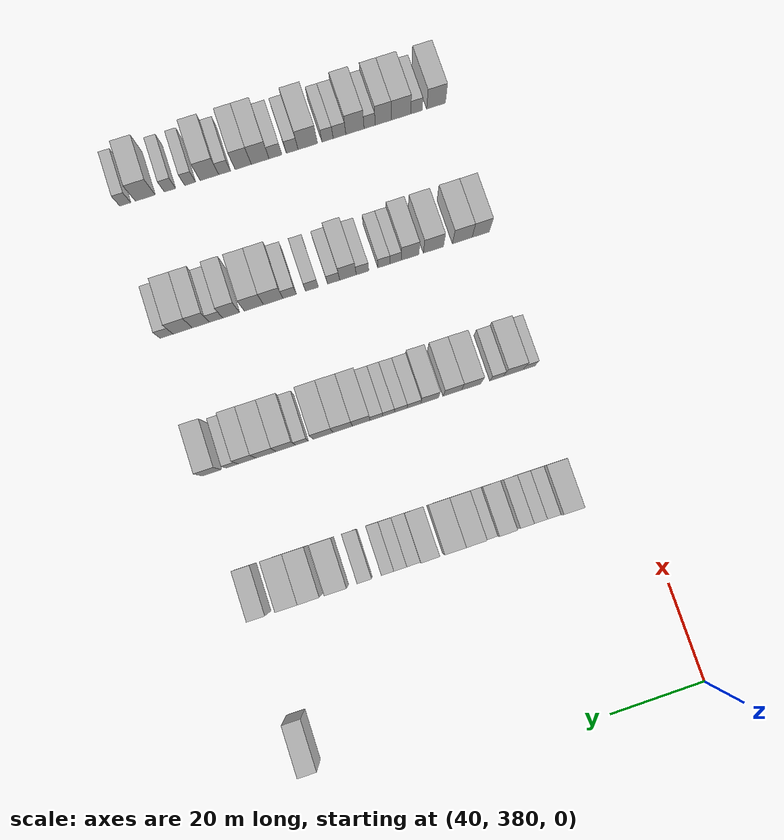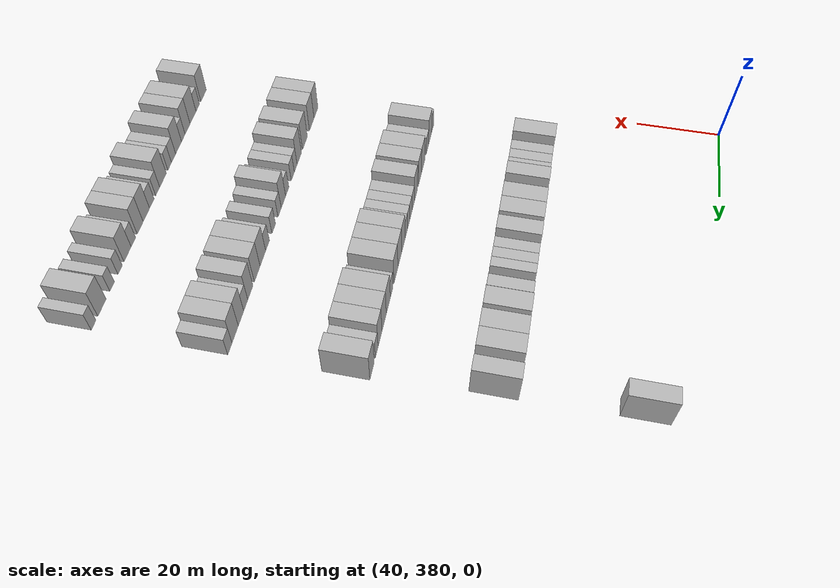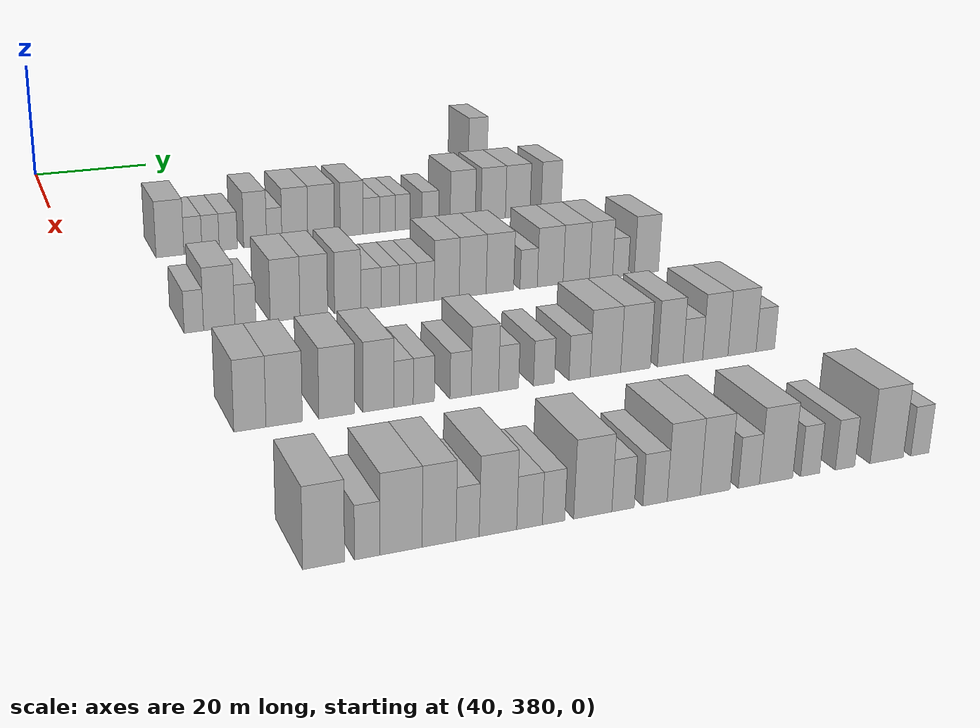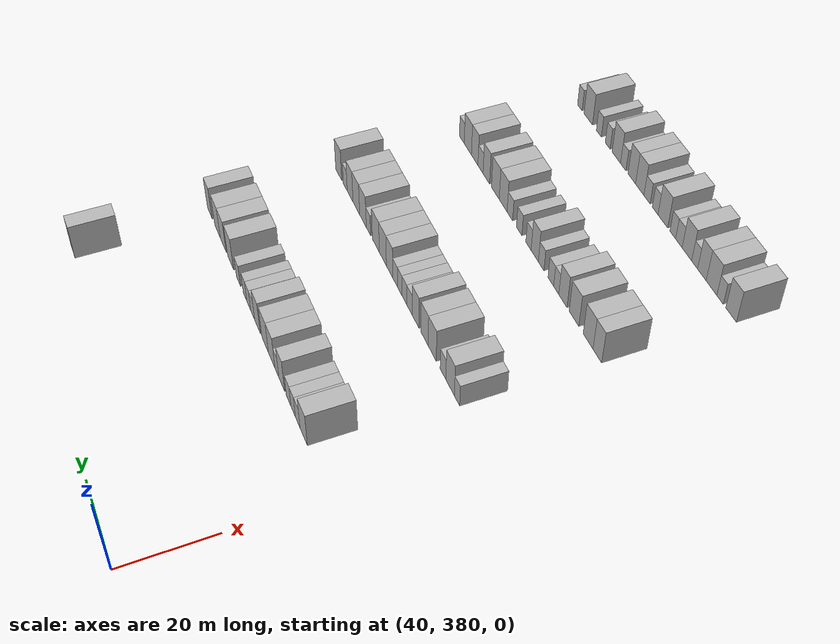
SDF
<sdf version="1.6">
 <world name="default">
  <model name="building_461">
   <static>1</static>
   <pose>55.0000 458.3114 0 0.000000 0.000000 0.000000</pose>
   <link name="link">
    <pose>0 0 4.50 0 0 0</pose>
    <collision name="collision"><geometry><box><size>10.0000 3.7789 9.0000</size></box></geometry></collision>
    <visual name="visual">
     <cast_shadows>0</cast_shadows>
     <geometry><box><size>10.0000 3.7789 9.0000</size></box></geometry>
     <material>
      <script>
       <uri>model://HANNAS_wall/materials/scripts</uri>
       <uri>model://HANNAS_wall/materials/textures</uri>
       <name>vrc/HANNAS_wall</name>
      </script>
     </material>
    </visual>
   </link>
  </model>
  <model name="building_680">
   <static>1</static>
   <pose>85.0000 394.7277 0 0.000000 0.000000 0.000000</pose>
   <link name="link">
    <pose>0 0 4.50 0 0 0</pose>
    <collision name="collision"><geometry><box><size>10.0000 4.3357 9.0000</size></box></geometry></collision>
    <visual name="visual">
     <cast_shadows>0</cast_shadows>
     <geometry><box><size>10.0000 4.3357 9.0000</size></box></geometry>
     <material>
      <script>
       <uri>model://HANNAS_wall/materials/scripts</uri>
       <uri>model://HANNAS_wall/materials/textures</uri>
       <name>vrc/HANNAS_wall</name>
      </script>
     </material>
    </visual>
   </link>
  </model>
  <model name="building_681">
   <static>1</static>
   <pose>85.0000 398.2990 0 0.000000 0.000000 0.000000</pose>
   <link name="link">
    <pose>0 0 3.00 0 0 0</pose>
    <collision name="collision"><geometry><box><size>10.0000 2.8069 6.0000</size></box></geometry></collision>
    <visual name="visual">
     <cast_shadows>0</cast_shadows>
     <geometry><box><size>10.0000 2.8069 6.0000</size></box></geometry>
     <material>
      <script>
       <uri>model://HANNAS_wall/materials/scripts</uri>
       <uri>model://HANNAS_wall/materials/textures</uri>
       <name>vrc/HANNAS_wall</name>
      </script>
     </material>
    </visual>
   </link>
  </model>
  <model name="building_682">
   <static>1</static>
   <pose>85.0000 401.0633 0 0.000000 0.000000 0.000000</pose>
   <link name="link">
    <pose>0 0 3.00 0 0 0</pose>
    <collision name="collision"><geometry><box><size>10.0000 2.7217 6.0000</size></box></geometry></collision>
    <visual name="visual">
     <cast_shadows>0</cast_shadows>
     <geometry><box><size>10.0000 2.7217 6.0000</size></box></geometry>
     <material>
      <script>
       <uri>model://HANNAS_wall/materials/scripts</uri>
       <uri>model://HANNAS_wall/materials/textures</uri>
       <name>vrc/HANNAS_wall</name>
      </script>
     </material>
    </visual>
   </link>
  </model>
  <model name="building_683">
   <static>1</static>
   <pose>85.0000 403.8664 0 0.000000 0.000000 0.000000</pose>
   <link name="link">
    <pose>0 0 3.00 0 0 0</pose>
    <collision name="collision"><geometry><box><size>10.0000 2.8845 6.0000</size></box></geometry></collision>
    <visual name="visual">
     <cast_shadows>0</cast_shadows>
     <geometry><box><size>10.0000 2.8845 6.0000</size></box></geometry>
     <material>
      <script>
       <uri>model://HANNAS_wall/materials/scripts</uri>
       <uri>model://HANNAS_wall/materials/textures</uri>
       <name>vrc/HANNAS_wall</name>
      </script>
     </material>
    </visual>
   </link>
  </model>
  <model name="building_684">
   <static>1</static>
   <pose>85.0000 408.1487 0 0.000000 0.000000 0.000000</pose>
   <link name="link">
    <pose>0 0 4.50 0 0 0</pose>
    <collision name="collision"><geometry><box><size>10.0000 3.6801 9.0000</size></box></geometry></collision>
    <visual name="visual">
     <cast_shadows>0</cast_shadows>
     <geometry><box><size>10.0000 3.6801 9.0000</size></box></geometry>
     <material>
      <script>
       <uri>model://HANNAS_wall/materials/scripts</uri>
       <uri>model://HANNAS_wall/materials/textures</uri>
       <name>vrc/HANNAS_wall</name>
      </script>
     </material>
    </visual>
   </link>
  </model>
  <model name="building_685">
   <static>1</static>
   <pose>85.0000 411.2327 0 0.000000 0.000000 0.000000</pose>
   <link name="link">
    <pose>0 0 3.00 0 0 0</pose>
    <collision name="collision"><geometry><box><size>10.0000 2.4879 6.0000</size></box></geometry></collision>
    <visual name="visual">
     <cast_shadows>0</cast_shadows>
     <geometry><box><size>10.0000 2.4879 6.0000</size></box></geometry>
     <material>
      <script>
       <uri>model://HANNAS_wall/materials/scripts</uri>
       <uri>model://HANNAS_wall/materials/textures</uri>
       <name>vrc/HANNAS_wall</name>
      </script>
     </material>
    </visual>
   </link>
  </model>
  <model name="building_686">
   <static>1</static>
   <pose>85.0000 414.5874 0 0.000000 0.000000 0.000000</pose>
   <link name="link">
    <pose>0 0 4.50 0 0 0</pose>
    <collision name="collision"><geometry><box><size>10.0000 4.2215 9.0000</size></box></geometry></collision>
    <visual name="visual">
     <cast_shadows>0</cast_shadows>
     <geometry><box><size>10.0000 4.2215 9.0000</size></box></geometry>
     <material>
      <script>
       <uri>model://HANNAS_wall/materials/scripts</uri>
       <uri>model://HANNAS_wall/materials/textures</uri>
       <name>vrc/HANNAS_wall</name>
      </script>
     </material>
    </visual>
   </link>
  </model>
  <model name="building_687">
   <static>1</static>
   <pose>85.0000 418.8867 0 0.000000 0.000000 0.000000</pose>
   <link name="link">
    <pose>0 0 4.50 0 0 0</pose>
    <collision name="collision"><geometry><box><size>10.0000 4.3772 9.0000</size></box></geometry></collision>
    <visual name="visual">
     <cast_shadows>0</cast_shadows>
     <geometry><box><size>10.0000 4.3772 9.0000</size></box></geometry>
     <material>
      <script>
       <uri>model://HANNAS_wall/materials/scripts</uri>
       <uri>model://HANNAS_wall/materials/textures</uri>
       <name>vrc/HANNAS_wall</name>
      </script>
     </material>
    </visual>
   </link>
  </model>
  <model name="building_688">
   <static>1</static>
   <pose>85.0000 423.9900 0 0.000000 0.000000 0.000000</pose>
   <link name="link">
    <pose>0 0 4.50 0 0 0</pose>
    <collision name="collision"><geometry><box><size>10.0000 3.8293 9.0000</size></box></geometry></collision>
    <visual name="visual">
     <cast_shadows>0</cast_shadows>
     <geometry><box><size>10.0000 3.8293 9.0000</size></box></geometry>
     <material>
      <script>
       <uri>model://HANNAS_wall/materials/scripts</uri>
       <uri>model://HANNAS_wall/materials/textures</uri>
       <name>vrc/HANNAS_wall</name>
      </script>
     </material>
    </visual>
   </link>
  </model>
  <model name="building_689">
   <static>1</static>
   <pose>85.0000 427.2907 0 0.000000 0.000000 0.000000</pose>
   <link name="link">
    <pose>0 0 3.00 0 0 0</pose>
    <collision name="collision"><geometry><box><size>10.0000 2.7721 6.0000</size></box></geometry></collision>
    <visual name="visual">
     <cast_shadows>0</cast_shadows>
     <geometry><box><size>10.0000 2.7721 6.0000</size></box></geometry>
     <material>
      <script>
       <uri>model://HANNAS_wall/materials/scripts</uri>
       <uri>model://HANNAS_wall/materials/textures</uri>
       <name>vrc/HANNAS_wall</name>
      </script>
     </material>
    </visual>
   </link>
  </model>
  <model name="building_690">
   <static>1</static>
   <pose>85.0000 430.0166 0 0.000000 0.000000 0.000000</pose>
   <link name="link">
    <pose>0 0 3.00 0 0 0</pose>
    <collision name="collision"><geometry><box><size>10.0000 2.6796 6.0000</size></box></geometry></collision>
    <visual name="visual">
     <cast_shadows>0</cast_shadows>
     <geometry><box><size>10.0000 2.6796 6.0000</size></box></geometry>
     <material>
      <script>
       <uri>model://HANNAS_wall/materials/scripts</uri>
       <uri>model://HANNAS_wall/materials/textures</uri>
       <name>vrc/HANNAS_wall</name>
      </script>
     </material>
    </visual>
   </link>
  </model>
  <model name="building_691">
   <static>1</static>
   <pose>85.0000 432.6240 0 0.000000 0.000000 0.000000</pose>
   <link name="link">
    <pose>0 0 3.00 0 0 0</pose>
    <collision name="collision"><geometry><box><size>10.0000 2.5351 6.0000</size></box></geometry></collision>
    <visual name="visual">
     <cast_shadows>0</cast_shadows>
     <geometry><box><size>10.0000 2.5351 6.0000</size></box></geometry>
     <material>
      <script>
       <uri>model://HANNAS_wall/materials/scripts</uri>
       <uri>model://HANNAS_wall/materials/textures</uri>
       <name>vrc/HANNAS_wall</name>
      </script>
     </material>
    </visual>
   </link>
  </model>
  <model name="building_692">
   <static>1</static>
   <pose>85.0000 437.3705 0 0.000000 0.000000 0.000000</pose>
   <link name="link">
    <pose>0 0 3.00 0 0 0</pose>
    <collision name="collision"><geometry><box><size>10.0000 2.9580 6.0000</size></box></geometry></collision>
    <visual name="visual">
     <cast_shadows>0</cast_shadows>
     <geometry><box><size>10.0000 2.9580 6.0000</size></box></geometry>
     <material>
      <script>
       <uri>model://HANNAS_wall/materials/scripts</uri>
       <uri>model://HANNAS_wall/materials/textures</uri>
       <name>vrc/HANNAS_wall</name>
      </script>
     </material>
    </visual>
   </link>
  </model>
  <model name="building_693">
   <static>1</static>
   <pose>85.0000 443.0673 0 0.000000 0.000000 0.000000</pose>
   <link name="link">
    <pose>0 0 4.50 0 0 0</pose>
    <collision name="collision"><geometry><box><size>10.0000 4.4355 9.0000</size></box></geometry></collision>
    <visual name="visual">
     <cast_shadows>0</cast_shadows>
     <geometry><box><size>10.0000 4.4355 9.0000</size></box></geometry>
     <material>
      <script>
       <uri>model://HANNAS_wall/materials/scripts</uri>
       <uri>model://HANNAS_wall/materials/textures</uri>
       <name>vrc/HANNAS_wall</name>
      </script>
     </material>
    </visual>
   </link>
  </model>
  <model name="building_694">
   <static>1</static>
   <pose>85.0000 448.4769 0 0.000000 0.000000 0.000000</pose>
   <link name="link">
    <pose>0 0 4.50 0 0 0</pose>
    <collision name="collision"><geometry><box><size>10.0000 4.3838 9.0000</size></box></geometry></collision>
    <visual name="visual">
     <cast_shadows>0</cast_shadows>
     <geometry><box><size>10.0000 4.3838 9.0000</size></box></geometry>
     <material>
      <script>
       <uri>model://HANNAS_wall/materials/scripts</uri>
       <uri>model://HANNAS_wall/materials/textures</uri>
       <name>vrc/HANNAS_wall</name>
      </script>
     </material>
    </visual>
   </link>
  </model>
  <model name="building_695">
   <static>1</static>
   <pose>85.0000 452.8931 0 0.000000 0.000000 0.000000</pose>
   <link name="link">
    <pose>0 0 4.50 0 0 0</pose>
    <collision name="collision"><geometry><box><size>10.0000 4.4485 9.0000</size></box></geometry></collision>
    <visual name="visual">
     <cast_shadows>0</cast_shadows>
     <geometry><box><size>10.0000 4.4485 9.0000</size></box></geometry>
     <material>
      <script>
       <uri>model://HANNAS_wall/materials/scripts</uri>
       <uri>model://HANNAS_wall/materials/textures</uri>
       <name>vrc/HANNAS_wall</name>
      </script>
     </material>
    </visual>
   </link>
  </model>
  <model name="building_696">
   <static>1</static>
   <pose>85.0000 458.9502 0 0.000000 0.000000 0.000000</pose>
   <link name="link">
    <pose>0 0 4.50 0 0 0</pose>
    <collision name="collision"><geometry><box><size>10.0000 3.6657 9.0000</size></box></geometry></collision>
    <visual name="visual">
     <cast_shadows>0</cast_shadows>
     <geometry><box><size>10.0000 3.6657 9.0000</size></box></geometry>
     <material>
      <script>
       <uri>model://HANNAS_wall/materials/scripts</uri>
       <uri>model://HANNAS_wall/materials/textures</uri>
       <name>vrc/HANNAS_wall</name>
      </script>
     </material>
    </visual>
   </link>
  </model>
  <model name="building_906">
   <static>1</static>
   <pose>115.0000 392.0106 0 0.000000 0.000000 0.000000</pose>
   <link name="link">
    <pose>0 0 3.00 0 0 0</pose>
    <collision name="collision"><geometry><box><size>10.0000 2.6448 6.0000</size></box></geometry></collision>
    <visual name="visual">
     <cast_shadows>0</cast_shadows>
     <geometry><box><size>10.0000 2.6448 6.0000</size></box></geometry>
     <material>
      <script>
       <uri>model://HANNAS_wall/materials/scripts</uri>
       <uri>model://HANNAS_wall/materials/textures</uri>
       <name>vrc/HANNAS_wall</name>
      </script>
     </material>
    </visual>
   </link>
  </model>
  <model name="building_907">
   <static>1</static>
   <pose>115.0000 395.4778 0 0.000000 0.000000 0.000000</pose>
   <link name="link">
    <pose>0 0 4.50 0 0 0</pose>
    <collision name="collision"><geometry><box><size>10.0000 4.2896 9.0000</size></box></geometry></collision>
    <visual name="visual">
     <cast_shadows>0</cast_shadows>
     <geometry><box><size>10.0000 4.2896 9.0000</size></box></geometry>
     <material>
      <script>
       <uri>model://HANNAS_wall/materials/scripts</uri>
       <uri>model://HANNAS_wall/materials/textures</uri>
       <name>vrc/HANNAS_wall</name>
      </script>
     </material>
    </visual>
   </link>
  </model>
  <model name="building_908">
   <static>1</static>
   <pose>115.0000 399.0930 0 0.000000 0.000000 0.000000</pose>
   <link name="link">
    <pose>0 0 3.00 0 0 0</pose>
    <collision name="collision"><geometry><box><size>10.0000 2.9408 6.0000</size></box></geometry></collision>
    <visual name="visual">
     <cast_shadows>0</cast_shadows>
     <geometry><box><size>10.0000 2.9408 6.0000</size></box></geometry>
     <material>
      <script>
       <uri>model://HANNAS_wall/materials/scripts</uri>
       <uri>model://HANNAS_wall/materials/textures</uri>
       <name>vrc/HANNAS_wall</name>
      </script>
     </material>
    </visual>
   </link>
  </model>
  <model name="building_909">
   <static>1</static>
   <pose>115.0000 404.6697 0 0.000000 0.000000 0.000000</pose>
   <link name="link">
    <pose>0 0 4.50 0 0 0</pose>
    <collision name="collision"><geometry><box><size>10.0000 4.2126 9.0000</size></box></geometry></collision>
    <visual name="visual">
     <cast_shadows>0</cast_shadows>
     <geometry><box><size>10.0000 4.2126 9.0000</size></box></geometry>
     <material>
      <script>
       <uri>model://HANNAS_wall/materials/scripts</uri>
       <uri>model://HANNAS_wall/materials/textures</uri>
       <name>vrc/HANNAS_wall</name>
      </script>
     </material>
    </visual>
   </link>
  </model>
  <model name="building_910">
   <static>1</static>
   <pose>115.0000 408.7584 0 0.000000 0.000000 0.000000</pose>
   <link name="link">
    <pose>0 0 4.50 0 0 0</pose>
    <collision name="collision"><geometry><box><size>10.0000 3.9649 9.0000</size></box></geometry></collision>
    <visual name="visual">
     <cast_shadows>0</cast_shadows>
     <geometry><box><size>10.0000 3.9649 9.0000</size></box></geometry>
     <material>
      <script>
       <uri>model://HANNAS_wall/materials/scripts</uri>
       <uri>model://HANNAS_wall/materials/textures</uri>
       <name>vrc/HANNAS_wall</name>
      </script>
     </material>
    </visual>
   </link>
  </model>
  <model name="building_911">
   <static>1</static>
   <pose>115.0000 413.6399 0 0.000000 0.000000 0.000000</pose>
   <link name="link">
    <pose>0 0 4.50 0 0 0</pose>
    <collision name="collision"><geometry><box><size>10.0000 3.7980 9.0000</size></box></geometry></collision>
    <visual name="visual">
     <cast_shadows>0</cast_shadows>
     <geometry><box><size>10.0000 3.7980 9.0000</size></box></geometry>
     <material>
      <script>
       <uri>model://HANNAS_wall/materials/scripts</uri>
       <uri>model://HANNAS_wall/materials/textures</uri>
       <name>vrc/HANNAS_wall</name>
      </script>
     </material>
    </visual>
   </link>
  </model>
  <model name="building_912">
   <static>1</static>
   <pose>115.0000 417.0335 0 0.000000 0.000000 0.000000</pose>
   <link name="link">
    <pose>0 0 3.00 0 0 0</pose>
    <collision name="collision"><geometry><box><size>10.0000 2.9892 6.0000</size></box></geometry></collision>
    <visual name="visual">
     <cast_shadows>0</cast_shadows>
     <geometry><box><size>10.0000 2.9892 6.0000</size></box></geometry>
     <material>
      <script>
       <uri>model://HANNAS_wall/materials/scripts</uri>
       <uri>model://HANNAS_wall/materials/textures</uri>
       <name>vrc/HANNAS_wall</name>
      </script>
     </material>
    </visual>
   </link>
  </model>
  <model name="building_913">
   <static>1</static>
   <pose>115.0000 419.8943 0 0.000000 0.000000 0.000000</pose>
   <link name="link">
    <pose>0 0 3.00 0 0 0</pose>
    <collision name="collision"><geometry><box><size>10.0000 2.7323 6.0000</size></box></geometry></collision>
    <visual name="visual">
     <cast_shadows>0</cast_shadows>
     <geometry><box><size>10.0000 2.7323 6.0000</size></box></geometry>
     <material>
      <script>
       <uri>model://HANNAS_wall/materials/scripts</uri>
       <uri>model://HANNAS_wall/materials/textures</uri>
       <name>vrc/HANNAS_wall</name>
      </script>
     </material>
    </visual>
   </link>
  </model>
  <model name="building_914">
   <static>1</static>
   <pose>115.0000 422.5094 0 0.000000 0.000000 0.000000</pose>
   <link name="link">
    <pose>0 0 3.00 0 0 0</pose>
    <collision name="collision"><geometry><box><size>10.0000 2.4979 6.0000</size></box></geometry></collision>
    <visual name="visual">
     <cast_shadows>0</cast_shadows>
     <geometry><box><size>10.0000 2.4979 6.0000</size></box></geometry>
     <material>
      <script>
       <uri>model://HANNAS_wall/materials/scripts</uri>
       <uri>model://HANNAS_wall/materials/textures</uri>
       <name>vrc/HANNAS_wall</name>
      </script>
     </material>
    </visual>
   </link>
  </model>
  <model name="building_915">
   <static>1</static>
   <pose>115.0000 425.1129 0 0.000000 0.000000 0.000000</pose>
   <link name="link">
    <pose>0 0 3.00 0 0 0</pose>
    <collision name="collision"><geometry><box><size>10.0000 2.7091 6.0000</size></box></geometry></collision>
    <visual name="visual">
     <cast_shadows>0</cast_shadows>
     <geometry><box><size>10.0000 2.7091 6.0000</size></box></geometry>
     <material>
      <script>
       <uri>model://HANNAS_wall/materials/scripts</uri>
       <uri>model://HANNAS_wall/materials/textures</uri>
       <name>vrc/HANNAS_wall</name>
      </script>
     </material>
    </visual>
   </link>
  </model>
  <model name="building_916">
   <static>1</static>
   <pose>115.0000 428.3734 0 0.000000 0.000000 0.000000</pose>
   <link name="link">
    <pose>0 0 4.50 0 0 0</pose>
    <collision name="collision"><geometry><box><size>10.0000 3.8120 9.0000</size></box></geometry></collision>
    <visual name="visual">
     <cast_shadows>0</cast_shadows>
     <geometry><box><size>10.0000 3.8120 9.0000</size></box></geometry>
     <material>
      <script>
       <uri>model://HANNAS_wall/materials/scripts</uri>
       <uri>model://HANNAS_wall/materials/textures</uri>
       <name>vrc/HANNAS_wall</name>
      </script>
     </material>
    </visual>
   </link>
  </model>
  <model name="building_917">
   <static>1</static>
   <pose>115.0000 432.3554 0 0.000000 0.000000 0.000000</pose>
   <link name="link">
    <pose>0 0 4.50 0 0 0</pose>
    <collision name="collision"><geometry><box><size>10.0000 4.1520 9.0000</size></box></geometry></collision>
    <visual name="visual">
     <cast_shadows>0</cast_shadows>
     <geometry><box><size>10.0000 4.1520 9.0000</size></box></geometry>
     <material>
      <script>
       <uri>model://HANNAS_wall/materials/scripts</uri>
       <uri>model://HANNAS_wall/materials/textures</uri>
       <name>vrc/HANNAS_wall</name>
      </script>
     </material>
    </visual>
   </link>
  </model>
  <model name="building_918">
   <static>1</static>
   <pose>115.0000 436.5811 0 0.000000 0.000000 0.000000</pose>
   <link name="link">
    <pose>0 0 4.50 0 0 0</pose>
    <collision name="collision"><geometry><box><size>10.0000 4.2993 9.0000</size></box></geometry></collision>
    <visual name="visual">
     <cast_shadows>0</cast_shadows>
     <geometry><box><size>10.0000 4.2993 9.0000</size></box></geometry>
     <material>
      <script>
       <uri>model://HANNAS_wall/materials/scripts</uri>
       <uri>model://HANNAS_wall/materials/textures</uri>
       <name>vrc/HANNAS_wall</name>
      </script>
     </material>
    </visual>
   </link>
  </model>
  <model name="building_919">
   <static>1</static>
   <pose>115.0000 441.0957 0 0.000000 0.000000 0.000000</pose>
   <link name="link">
    <pose>0 0 3.00 0 0 0</pose>
    <collision name="collision"><geometry><box><size>10.0000 2.7298 6.0000</size></box></geometry></collision>
    <visual name="visual">
     <cast_shadows>0</cast_shadows>
     <geometry><box><size>10.0000 2.7298 6.0000</size></box></geometry>
     <material>
      <script>
       <uri>model://HANNAS_wall/materials/scripts</uri>
       <uri>model://HANNAS_wall/materials/textures</uri>
       <name>vrc/HANNAS_wall</name>
      </script>
     </material>
    </visual>
   </link>
  </model>
  <model name="building_920">
   <static>1</static>
   <pose>115.0000 444.5200 0 0.000000 0.000000 0.000000</pose>
   <link name="link">
    <pose>0 0 4.50 0 0 0</pose>
    <collision name="collision"><geometry><box><size>10.0000 4.1188 9.0000</size></box></geometry></collision>
    <visual name="visual">
     <cast_shadows>0</cast_shadows>
     <geometry><box><size>10.0000 4.1188 9.0000</size></box></geometry>
     <material>
      <script>
       <uri>model://HANNAS_wall/materials/scripts</uri>
       <uri>model://HANNAS_wall/materials/textures</uri>
       <name>vrc/HANNAS_wall</name>
      </script>
     </material>
    </visual>
   </link>
  </model>
  <model name="building_921">
   <static>1</static>
   <pose>115.0000 448.7143 0 0.000000 0.000000 0.000000</pose>
   <link name="link">
    <pose>0 0 4.50 0 0 0</pose>
    <collision name="collision"><geometry><box><size>10.0000 4.2696 9.0000</size></box></geometry></collision>
    <visual name="visual">
     <cast_shadows>0</cast_shadows>
     <geometry><box><size>10.0000 4.2696 9.0000</size></box></geometry>
     <material>
      <script>
       <uri>model://HANNAS_wall/materials/scripts</uri>
       <uri>model://HANNAS_wall/materials/textures</uri>
       <name>vrc/HANNAS_wall</name>
      </script>
     </material>
    </visual>
   </link>
  </model>
  <model name="building_922">
   <static>1</static>
   <pose>115.0000 452.7347 0 0.000000 0.000000 0.000000</pose>
   <link name="link">
    <pose>0 0 4.50 0 0 0</pose>
    <collision name="collision"><geometry><box><size>10.0000 3.7713 9.0000</size></box></geometry></collision>
    <visual name="visual">
     <cast_shadows>0</cast_shadows>
     <geometry><box><size>10.0000 3.7713 9.0000</size></box></geometry>
     <material>
      <script>
       <uri>model://HANNAS_wall/materials/scripts</uri>
       <uri>model://HANNAS_wall/materials/textures</uri>
       <name>vrc/HANNAS_wall</name>
      </script>
     </material>
    </visual>
   </link>
  </model>
  <model name="building_923">
   <static>1</static>
   <pose>115.0000 455.9240 0 0.000000 0.000000 0.000000</pose>
   <link name="link">
    <pose>0 0 3.00 0 0 0</pose>
    <collision name="collision"><geometry><box><size>10.0000 2.6074 6.0000</size></box></geometry></collision>
    <visual name="visual">
     <cast_shadows>0</cast_shadows>
     <geometry><box><size>10.0000 2.6074 6.0000</size></box></geometry>
     <material>
      <script>
       <uri>model://HANNAS_wall/materials/scripts</uri>
       <uri>model://HANNAS_wall/materials/textures</uri>
       <name>vrc/HANNAS_wall</name>
      </script>
     </material>
    </visual>
   </link>
  </model>
  <model name="building_924">
   <static>1</static>
   <pose>115.0000 460.2471 0 0.000000 0.000000 0.000000</pose>
   <link name="link">
    <pose>0 0 4.50 0 0 0</pose>
    <collision name="collision"><geometry><box><size>10.0000 4.0387 9.0000</size></box></geometry></collision>
    <visual name="visual">
     <cast_shadows>0</cast_shadows>
     <geometry><box><size>10.0000 4.0387 9.0000</size></box></geometry>
     <material>
      <script>
       <uri>model://HANNAS_wall/materials/scripts</uri>
       <uri>model://HANNAS_wall/materials/textures</uri>
       <name>vrc/HANNAS_wall</name>
      </script>
     </material>
    </visual>
   </link>
  </model>
  <model name="building_1139">
   <static>1</static>
   <pose>145.0000 392.1479 0 0.000000 0.000000 0.000000</pose>
   <link name="link">
    <pose>0 0 4.50 0 0 0</pose>
    <collision name="collision"><geometry><box><size>10.0000 3.8210 9.0000</size></box></geometry></collision>
    <visual name="visual">
     <cast_shadows>0</cast_shadows>
     <geometry><box><size>10.0000 3.8210 9.0000</size></box></geometry>
     <material>
      <script>
       <uri>model://HANNAS_wall/materials/scripts</uri>
       <uri>model://HANNAS_wall/materials/textures</uri>
       <name>vrc/HANNAS_wall</name>
      </script>
     </material>
    </visual>
   </link>
  </model>
  <model name="building_1140">
   <static>1</static>
   <pose>145.0000 396.2438 0 0.000000 0.000000 0.000000</pose>
   <link name="link">
    <pose>0 0 4.50 0 0 0</pose>
    <collision name="collision"><geometry><box><size>10.0000 4.3707 9.0000</size></box></geometry></collision>
    <visual name="visual">
     <cast_shadows>0</cast_shadows>
     <geometry><box><size>10.0000 4.3707 9.0000</size></box></geometry>
     <material>
      <script>
       <uri>model://HANNAS_wall/materials/scripts</uri>
       <uri>model://HANNAS_wall/materials/textures</uri>
       <name>vrc/HANNAS_wall</name>
      </script>
     </material>
    </visual>
   </link>
  </model>
  <model name="building_1141">
   <static>1</static>
   <pose>145.0000 402.6449 0 0.000000 0.000000 0.000000</pose>
   <link name="link">
    <pose>0 0 4.50 0 0 0</pose>
    <collision name="collision"><geometry><box><size>10.0000 4.4314 9.0000</size></box></geometry></collision>
    <visual name="visual">
     <cast_shadows>0</cast_shadows>
     <geometry><box><size>10.0000 4.4314 9.0000</size></box></geometry>
     <material>
      <script>
       <uri>model://HANNAS_wall/materials/scripts</uri>
       <uri>model://HANNAS_wall/materials/textures</uri>
       <name>vrc/HANNAS_wall</name>
      </script>
     </material>
    </visual>
   </link>
  </model>
  <model name="building_1142">
   <static>1</static>
   <pose>145.0000 407.7999 0 0.000000 0.000000 0.000000</pose>
   <link name="link">
    <pose>0 0 4.50 0 0 0</pose>
    <collision name="collision"><geometry><box><size>10.0000 3.8786 9.0000</size></box></geometry></collision>
    <visual name="visual">
     <cast_shadows>0</cast_shadows>
     <geometry><box><size>10.0000 3.8786 9.0000</size></box></geometry>
     <material>
      <script>
       <uri>model://HANNAS_wall/materials/scripts</uri>
       <uri>model://HANNAS_wall/materials/textures</uri>
       <name>vrc/HANNAS_wall</name>
      </script>
     </material>
    </visual>
   </link>
  </model>
  <model name="building_1143">
   <static>1</static>
   <pose>145.0000 410.9727 0 0.000000 0.000000 0.000000</pose>
   <link name="link">
    <pose>0 0 3.00 0 0 0</pose>
    <collision name="collision"><geometry><box><size>10.0000 2.4669 6.0000</size></box></geometry></collision>
    <visual name="visual">
     <cast_shadows>0</cast_shadows>
     <geometry><box><size>10.0000 2.4669 6.0000</size></box></geometry>
     <material>
      <script>
       <uri>model://HANNAS_wall/materials/scripts</uri>
       <uri>model://HANNAS_wall/materials/textures</uri>
       <name>vrc/HANNAS_wall</name>
      </script>
     </material>
    </visual>
   </link>
  </model>
  <model name="building_1144">
   <static>1</static>
   <pose>145.0000 413.5611 0 0.000000 0.000000 0.000000</pose>
   <link name="link">
    <pose>0 0 3.00 0 0 0</pose>
    <collision name="collision"><geometry><box><size>10.0000 2.7099 6.0000</size></box></geometry></collision>
    <visual name="visual">
     <cast_shadows>0</cast_shadows>
     <geometry><box><size>10.0000 2.7099 6.0000</size></box></geometry>
     <material>
      <script>
       <uri>model://HANNAS_wall/materials/scripts</uri>
       <uri>model://HANNAS_wall/materials/textures</uri>
       <name>vrc/HANNAS_wall</name>
      </script>
     </material>
    </visual>
   </link>
  </model>
  <model name="building_1145">
   <static>1</static>
   <pose>145.0000 418.2954 0 0.000000 0.000000 0.000000</pose>
   <link name="link">
    <pose>0 0 3.00 0 0 0</pose>
    <collision name="collision"><geometry><box><size>10.0000 2.7588 6.0000</size></box></geometry></collision>
    <visual name="visual">
     <cast_shadows>0</cast_shadows>
     <geometry><box><size>10.0000 2.7588 6.0000</size></box></geometry>
     <material>
      <script>
       <uri>model://HANNAS_wall/materials/scripts</uri>
       <uri>model://HANNAS_wall/materials/textures</uri>
       <name>vrc/HANNAS_wall</name>
      </script>
     </material>
    </visual>
   </link>
  </model>
  <model name="building_1146">
   <static>1</static>
   <pose>145.0000 421.4843 0 0.000000 0.000000 0.000000</pose>
   <link name="link">
    <pose>0 0 4.50 0 0 0</pose>
    <collision name="collision"><geometry><box><size>10.0000 3.6191 9.0000</size></box></geometry></collision>
    <visual name="visual">
     <cast_shadows>0</cast_shadows>
     <geometry><box><size>10.0000 3.6191 9.0000</size></box></geometry>
     <material>
      <script>
       <uri>model://HANNAS_wall/materials/scripts</uri>
       <uri>model://HANNAS_wall/materials/textures</uri>
       <name>vrc/HANNAS_wall</name>
      </script>
     </material>
    </visual>
   </link>
  </model>
  <model name="building_1147">
   <static>1</static>
   <pose>145.0000 424.6283 0 0.000000 0.000000 0.000000</pose>
   <link name="link">
    <pose>0 0 3.00 0 0 0</pose>
    <collision name="collision"><geometry><box><size>10.0000 2.6688 6.0000</size></box></geometry></collision>
    <visual name="visual">
     <cast_shadows>0</cast_shadows>
     <geometry><box><size>10.0000 2.6688 6.0000</size></box></geometry>
     <material>
      <script>
       <uri>model://HANNAS_wall/materials/scripts</uri>
       <uri>model://HANNAS_wall/materials/textures</uri>
       <name>vrc/HANNAS_wall</name>
      </script>
     </material>
    </visual>
   </link>
  </model>
  <model name="building_1148">
   <static>1</static>
   <pose>145.0000 429.3731 0 0.000000 0.000000 0.000000</pose>
   <link name="link">
    <pose>0 0 3.00 0 0 0</pose>
    <collision name="collision"><geometry><box><size>10.0000 2.8208 6.0000</size></box></geometry></collision>
    <visual name="visual">
     <cast_shadows>0</cast_shadows>
     <geometry><box><size>10.0000 2.8208 6.0000</size></box></geometry>
     <material>
      <script>
       <uri>model://HANNAS_wall/materials/scripts</uri>
       <uri>model://HANNAS_wall/materials/textures</uri>
       <name>vrc/HANNAS_wall</name>
      </script>
     </material>
    </visual>
   </link>
  </model>
  <model name="building_1149">
   <static>1</static>
   <pose>145.0000 434.2460 0 0.000000 0.000000 0.000000</pose>
   <link name="link">
    <pose>0 0 3.00 0 0 0</pose>
    <collision name="collision"><geometry><box><size>10.0000 2.9248 6.0000</size></box></geometry></collision>
    <visual name="visual">
     <cast_shadows>0</cast_shadows>
     <geometry><box><size>10.0000 2.9248 6.0000</size></box></geometry>
     <material>
      <script>
       <uri>model://HANNAS_wall/materials/scripts</uri>
       <uri>model://HANNAS_wall/materials/textures</uri>
       <name>vrc/HANNAS_wall</name>
      </script>
     </material>
    </visual>
   </link>
  </model>
  <model name="building_1150">
   <static>1</static>
   <pose>145.0000 437.8308 0 0.000000 0.000000 0.000000</pose>
   <link name="link">
    <pose>0 0 4.50 0 0 0</pose>
    <collision name="collision"><geometry><box><size>10.0000 4.2448 9.0000</size></box></geometry></collision>
    <visual name="visual">
     <cast_shadows>0</cast_shadows>
     <geometry><box><size>10.0000 4.2448 9.0000</size></box></geometry>
     <material>
      <script>
       <uri>model://HANNAS_wall/materials/scripts</uri>
       <uri>model://HANNAS_wall/materials/textures</uri>
       <name>vrc/HANNAS_wall</name>
      </script>
     </material>
    </visual>
   </link>
  </model>
  <model name="building_1151">
   <static>1</static>
   <pose>145.0000 442.0598 0 0.000000 0.000000 0.000000</pose>
   <link name="link">
    <pose>0 0 4.50 0 0 0</pose>
    <collision name="collision"><geometry><box><size>10.0000 4.2133 9.0000</size></box></geometry></collision>
    <visual name="visual">
     <cast_shadows>0</cast_shadows>
     <geometry><box><size>10.0000 4.2133 9.0000</size></box></geometry>
     <material>
      <script>
       <uri>model://HANNAS_wall/materials/scripts</uri>
       <uri>model://HANNAS_wall/materials/textures</uri>
       <name>vrc/HANNAS_wall</name>
      </script>
     </material>
    </visual>
   </link>
  </model>
  <model name="building_1152">
   <static>1</static>
   <pose>145.0000 447.0048 0 0.000000 0.000000 0.000000</pose>
   <link name="link">
    <pose>0 0 4.50 0 0 0</pose>
    <collision name="collision"><geometry><box><size>10.0000 3.6765 9.0000</size></box></geometry></collision>
    <visual name="visual">
     <cast_shadows>0</cast_shadows>
     <geometry><box><size>10.0000 3.6765 9.0000</size></box></geometry>
     <material>
      <script>
       <uri>model://HANNAS_wall/materials/scripts</uri>
       <uri>model://HANNAS_wall/materials/textures</uri>
       <name>vrc/HANNAS_wall</name>
      </script>
     </material>
    </visual>
   </link>
  </model>
  <model name="building_1153">
   <static>1</static>
   <pose>145.0000 450.2711 0 0.000000 0.000000 0.000000</pose>
   <link name="link">
    <pose>0 0 3.00 0 0 0</pose>
    <collision name="collision"><geometry><box><size>10.0000 2.8562 6.0000</size></box></geometry></collision>
    <visual name="visual">
     <cast_shadows>0</cast_shadows>
     <geometry><box><size>10.0000 2.8562 6.0000</size></box></geometry>
     <material>
      <script>
       <uri>model://HANNAS_wall/materials/scripts</uri>
       <uri>model://HANNAS_wall/materials/textures</uri>
       <name>vrc/HANNAS_wall</name>
      </script>
     </material>
    </visual>
   </link>
  </model>
  <model name="building_1154">
   <static>1</static>
   <pose>145.0000 453.5614 0 0.000000 0.000000 0.000000</pose>
   <link name="link">
    <pose>0 0 4.50 0 0 0</pose>
    <collision name="collision"><geometry><box><size>10.0000 3.7243 9.0000</size></box></geometry></collision>
    <visual name="visual">
     <cast_shadows>0</cast_shadows>
     <geometry><box><size>10.0000 3.7243 9.0000</size></box></geometry>
     <material>
      <script>
       <uri>model://HANNAS_wall/materials/scripts</uri>
       <uri>model://HANNAS_wall/materials/textures</uri>
       <name>vrc/HANNAS_wall</name>
      </script>
     </material>
    </visual>
   </link>
  </model>
  <model name="building_1155">
   <static>1</static>
   <pose>145.0000 457.5152 0 0.000000 0.000000 0.000000</pose>
   <link name="link">
    <pose>0 0 4.50 0 0 0</pose>
    <collision name="collision"><geometry><box><size>10.0000 4.1833 9.0000</size></box></geometry></collision>
    <visual name="visual">
     <cast_shadows>0</cast_shadows>
     <geometry><box><size>10.0000 4.1833 9.0000</size></box></geometry>
     <material>
      <script>
       <uri>model://HANNAS_wall/materials/scripts</uri>
       <uri>model://HANNAS_wall/materials/textures</uri>
       <name>vrc/HANNAS_wall</name>
      </script>
     </material>
    </visual>
   </link>
  </model>
  <model name="building_1156">
   <static>1</static>
   <pose>145.0000 461.0043 0 0.000000 0.000000 0.000000</pose>
   <link name="link">
    <pose>0 0 3.00 0 0 0</pose>
    <collision name="collision"><geometry><box><size>10.0000 2.7948 6.0000</size></box></geometry></collision>
    <visual name="visual">
     <cast_shadows>0</cast_shadows>
     <geometry><box><size>10.0000 2.7948 6.0000</size></box></geometry>
     <material>
      <script>
       <uri>model://HANNAS_wall/materials/scripts</uri>
       <uri>model://HANNAS_wall/materials/textures</uri>
       <name>vrc/HANNAS_wall</name>
      </script>
     </material>
    </visual>
   </link>
  </model>
  <model name="building_1372">
   <static>1</static>
   <pose>175.0000 391.8757 0 0.000000 0.000000 0.000000</pose>
   <link name="link">
    <pose>0 0 4.50 0 0 0</pose>
    <collision name="collision"><geometry><box><size>10.0000 4.2314 9.0000</size></box></geometry></collision>
    <visual name="visual">
     <cast_shadows>0</cast_shadows>
     <geometry><box><size>10.0000 4.2314 9.0000</size></box></geometry>
     <material>
      <script>
       <uri>model://HANNAS_wall/materials/scripts</uri>
       <uri>model://HANNAS_wall/materials/textures</uri>
       <name>vrc/HANNAS_wall</name>
      </script>
     </material>
    </visual>
   </link>
  </model>
  <model name="building_1373">
   <static>1</static>
   <pose>175.0000 396.2974 0 0.000000 0.000000 0.000000</pose>
   <link name="link">
    <pose>0 0 3.00 0 0 0</pose>
    <collision name="collision"><geometry><box><size>10.0000 2.6120 6.0000</size></box></geometry></collision>
    <visual name="visual">
     <cast_shadows>0</cast_shadows>
     <geometry><box><size>10.0000 2.6120 6.0000</size></box></geometry>
     <material>
      <script>
       <uri>model://HANNAS_wall/materials/scripts</uri>
       <uri>model://HANNAS_wall/materials/textures</uri>
       <name>vrc/HANNAS_wall</name>
      </script>
     </material>
    </visual>
   </link>
  </model>
  <model name="building_1374">
   <static>1</static>
   <pose>175.0000 399.8058 0 0.000000 0.000000 0.000000</pose>
   <link name="link">
    <pose>0 0 4.50 0 0 0</pose>
    <collision name="collision"><geometry><box><size>10.0000 4.4048 9.0000</size></box></geometry></collision>
    <visual name="visual">
     <cast_shadows>0</cast_shadows>
     <geometry><box><size>10.0000 4.4048 9.0000</size></box></geometry>
     <material>
      <script>
       <uri>model://HANNAS_wall/materials/scripts</uri>
       <uri>model://HANNAS_wall/materials/textures</uri>
       <name>vrc/HANNAS_wall</name>
      </script>
     </material>
    </visual>
   </link>
  </model>
  <model name="building_1375">
   <static>1</static>
   <pose>175.0000 403.8087 0 0.000000 0.000000 0.000000</pose>
   <link name="link">
    <pose>0 0 4.50 0 0 0</pose>
    <collision name="collision"><geometry><box><size>10.0000 3.6011 9.0000</size></box></geometry></collision>
    <visual name="visual">
     <cast_shadows>0</cast_shadows>
     <geometry><box><size>10.0000 3.6011 9.0000</size></box></geometry>
     <material>
      <script>
       <uri>model://HANNAS_wall/materials/scripts</uri>
       <uri>model://HANNAS_wall/materials/textures</uri>
       <name>vrc/HANNAS_wall</name>
      </script>
     </material>
    </visual>
   </link>
  </model>
  <model name="building_1376">
   <static>1</static>
   <pose>175.0000 406.8617 0 0.000000 0.000000 0.000000</pose>
   <link name="link">
    <pose>0 0 3.00 0 0 0</pose>
    <collision name="collision"><geometry><box><size>10.0000 2.5049 6.0000</size></box></geometry></collision>
    <visual name="visual">
     <cast_shadows>0</cast_shadows>
     <geometry><box><size>10.0000 2.5049 6.0000</size></box></geometry>
     <material>
      <script>
       <uri>model://HANNAS_wall/materials/scripts</uri>
       <uri>model://HANNAS_wall/materials/textures</uri>
       <name>vrc/HANNAS_wall</name>
      </script>
     </material>
    </visual>
   </link>
  </model>
  <model name="building_1377">
   <static>1</static>
   <pose>175.0000 410.1634 0 0.000000 0.000000 0.000000</pose>
   <link name="link">
    <pose>0 0 4.50 0 0 0</pose>
    <collision name="collision"><geometry><box><size>10.0000 4.0985 9.0000</size></box></geometry></collision>
    <visual name="visual">
     <cast_shadows>0</cast_shadows>
     <geometry><box><size>10.0000 4.0985 9.0000</size></box></geometry>
     <material>
      <script>
       <uri>model://HANNAS_wall/materials/scripts</uri>
       <uri>model://HANNAS_wall/materials/textures</uri>
       <name>vrc/HANNAS_wall</name>
      </script>
     </material>
    </visual>
   </link>
  </model>
  <model name="building_1378">
   <static>1</static>
   <pose>175.0000 413.6353 0 0.000000 0.000000 0.000000</pose>
   <link name="link">
    <pose>0 0 3.00 0 0 0</pose>
    <collision name="collision"><geometry><box><size>10.0000 2.8454 6.0000</size></box></geometry></collision>
    <visual name="visual">
     <cast_shadows>0</cast_shadows>
     <geometry><box><size>10.0000 2.8454 6.0000</size></box></geometry>
     <material>
      <script>
       <uri>model://HANNAS_wall/materials/scripts</uri>
       <uri>model://HANNAS_wall/materials/textures</uri>
       <name>vrc/HANNAS_wall</name>
      </script>
     </material>
    </visual>
   </link>
  </model>
  <model name="building_1379">
   <static>1</static>
   <pose>175.0000 416.3133 0 0.000000 0.000000 0.000000</pose>
   <link name="link">
    <pose>0 0 3.00 0 0 0</pose>
    <collision name="collision"><geometry><box><size>10.0000 2.5106 6.0000</size></box></geometry></collision>
    <visual name="visual">
     <cast_shadows>0</cast_shadows>
     <geometry><box><size>10.0000 2.5106 6.0000</size></box></geometry>
     <material>
      <script>
       <uri>model://HANNAS_wall/materials/scripts</uri>
       <uri>model://HANNAS_wall/materials/textures</uri>
       <name>vrc/HANNAS_wall</name>
      </script>
     </material>
    </visual>
   </link>
  </model>
  <model name="building_1380">
   <static>1</static>
   <pose>175.0000 420.7477 0 0.000000 0.000000 0.000000</pose>
   <link name="link">
    <pose>0 0 4.50 0 0 0</pose>
    <collision name="collision"><geometry><box><size>10.0000 4.3581 9.0000</size></box></geometry></collision>
    <visual name="visual">
     <cast_shadows>0</cast_shadows>
     <geometry><box><size>10.0000 4.3581 9.0000</size></box></geometry>
     <material>
      <script>
       <uri>model://HANNAS_wall/materials/scripts</uri>
       <uri>model://HANNAS_wall/materials/textures</uri>
       <name>vrc/HANNAS_wall</name>
      </script>
     </material>
    </visual>
   </link>
  </model>
  <model name="building_1381">
   <static>1</static>
   <pose>175.0000 424.2268 0 0.000000 0.000000 0.000000</pose>
   <link name="link">
    <pose>0 0 3.00 0 0 0</pose>
    <collision name="collision"><geometry><box><size>10.0000 2.6000 6.0000</size></box></geometry></collision>
    <visual name="visual">
     <cast_shadows>0</cast_shadows>
     <geometry><box><size>10.0000 2.6000 6.0000</size></box></geometry>
     <material>
      <script>
       <uri>model://HANNAS_wall/materials/scripts</uri>
       <uri>model://HANNAS_wall/materials/textures</uri>
       <name>vrc/HANNAS_wall</name>
      </script>
     </material>
    </visual>
   </link>
  </model>
  <model name="building_1382">
   <static>1</static>
   <pose>175.0000 427.9608 0 0.000000 0.000000 0.000000</pose>
   <link name="link">
    <pose>0 0 3.00 0 0 0</pose>
    <collision name="collision"><geometry><box><size>10.0000 2.8681 6.0000</size></box></geometry></collision>
    <visual name="visual">
     <cast_shadows>0</cast_shadows>
     <geometry><box><size>10.0000 2.8681 6.0000</size></box></geometry>
     <material>
      <script>
       <uri>model://HANNAS_wall/materials/scripts</uri>
       <uri>model://HANNAS_wall/materials/textures</uri>
       <name>vrc/HANNAS_wall</name>
      </script>
     </material>
    </visual>
   </link>
  </model>
  <model name="building_1383">
   <static>1</static>
   <pose>175.0000 431.3679 0 0.000000 0.000000 0.000000</pose>
   <link name="link">
    <pose>0 0 4.50 0 0 0</pose>
    <collision name="collision"><geometry><box><size>10.0000 3.9463 9.0000</size></box></geometry></collision>
    <visual name="visual">
     <cast_shadows>0</cast_shadows>
     <geometry><box><size>10.0000 3.9463 9.0000</size></box></geometry>
     <material>
      <script>
       <uri>model://HANNAS_wall/materials/scripts</uri>
       <uri>model://HANNAS_wall/materials/textures</uri>
       <name>vrc/HANNAS_wall</name>
      </script>
     </material>
    </visual>
   </link>
  </model>
  <model name="building_1384">
   <static>1</static>
   <pose>175.0000 435.1453 0 0.000000 0.000000 0.000000</pose>
   <link name="link">
    <pose>0 0 4.50 0 0 0</pose>
    <collision name="collision"><geometry><box><size>10.0000 3.6086 9.0000</size></box></geometry></collision>
    <visual name="visual">
     <cast_shadows>0</cast_shadows>
     <geometry><box><size>10.0000 3.6086 9.0000</size></box></geometry>
     <material>
      <script>
       <uri>model://HANNAS_wall/materials/scripts</uri>
       <uri>model://HANNAS_wall/materials/textures</uri>
       <name>vrc/HANNAS_wall</name>
      </script>
     </material>
    </visual>
   </link>
  </model>
  <model name="building_1385">
   <static>1</static>
   <pose>175.0000 439.2572 0 0.000000 0.000000 0.000000</pose>
   <link name="link">
    <pose>0 0 3.00 0 0 0</pose>
    <collision name="collision"><geometry><box><size>10.0000 2.6152 6.0000</size></box></geometry></collision>
    <visual name="visual">
     <cast_shadows>0</cast_shadows>
     <geometry><box><size>10.0000 2.6152 6.0000</size></box></geometry>
     <material>
      <script>
       <uri>model://HANNAS_wall/materials/scripts</uri>
       <uri>model://HANNAS_wall/materials/textures</uri>
       <name>vrc/HANNAS_wall</name>
      </script>
     </material>
    </visual>
   </link>
  </model>
  <model name="building_1386">
   <static>1</static>
   <pose>175.0000 442.6378 0 0.000000 0.000000 0.000000</pose>
   <link name="link">
    <pose>0 0 4.50 0 0 0</pose>
    <collision name="collision"><geometry><box><size>10.0000 4.1460 9.0000</size></box></geometry></collision>
    <visual name="visual">
     <cast_shadows>0</cast_shadows>
     <geometry><box><size>10.0000 4.1460 9.0000</size></box></geometry>
     <material>
      <script>
       <uri>model://HANNAS_wall/materials/scripts</uri>
       <uri>model://HANNAS_wall/materials/textures</uri>
       <name>vrc/HANNAS_wall</name>
      </script>
     </material>
    </visual>
   </link>
  </model>
  <model name="building_1387">
   <static>1</static>
   <pose>175.0000 446.9190 0 0.000000 0.000000 0.000000</pose>
   <link name="link">
    <pose>0 0 3.00 0 0 0</pose>
    <collision name="collision"><geometry><box><size>10.0000 2.4163 6.0000</size></box></geometry></collision>
    <visual name="visual">
     <cast_shadows>0</cast_shadows>
     <geometry><box><size>10.0000 2.4163 6.0000</size></box></geometry>
     <material>
      <script>
       <uri>model://HANNAS_wall/materials/scripts</uri>
       <uri>model://HANNAS_wall/materials/textures</uri>
       <name>vrc/HANNAS_wall</name>
      </script>
     </material>
    </visual>
   </link>
  </model>
  <model name="building_1388">
   <static>1</static>
   <pose>175.0000 451.3779 0 0.000000 0.000000 0.000000</pose>
   <link name="link">
    <pose>0 0 3.00 0 0 0</pose>
    <collision name="collision"><geometry><box><size>10.0000 2.5014 6.0000</size></box></geometry></collision>
    <visual name="visual">
     <cast_shadows>0</cast_shadows>
     <geometry><box><size>10.0000 2.5014 6.0000</size></box></geometry>
     <material>
      <script>
       <uri>model://HANNAS_wall/materials/scripts</uri>
       <uri>model://HANNAS_wall/materials/textures</uri>
       <name>vrc/HANNAS_wall</name>
      </script>
     </material>
    </visual>
   </link>
  </model>
  <model name="building_1389">
   <static>1</static>
   <pose>175.0000 456.8277 0 0.000000 0.000000 0.000000</pose>
   <link name="link">
    <pose>0 0 4.50 0 0 0</pose>
    <collision name="collision"><geometry><box><size>10.0000 4.3983 9.0000</size></box></geometry></collision>
    <visual name="visual">
     <cast_shadows>0</cast_shadows>
     <geometry><box><size>10.0000 4.3983 9.0000</size></box></geometry>
     <material>
      <script>
       <uri>model://HANNAS_wall/materials/scripts</uri>
       <uri>model://HANNAS_wall/materials/textures</uri>
       <name>vrc/HANNAS_wall</name>
      </script>
     </material>
    </visual>
   </link>
  </model>
  <model name="building_1390">
   <static>1</static>
   <pose>175.0000 461.2369 0 0.000000 0.000000 0.000000</pose>
   <link name="link">
    <pose>0 0 3.00 0 0 0</pose>
    <collision name="collision"><geometry><box><size>10.0000 2.4201 6.0000</size></box></geometry></collision>
    <visual name="visual">
     <cast_shadows>0</cast_shadows>
     <geometry><box><size>10.0000 2.4201 6.0000</size></box></geometry>
     <material>
      <script>
       <uri>model://HANNAS_wall/materials/scripts</uri>
       <uri>model://HANNAS_wall/materials/textures</uri>
       <name>vrc/HANNAS_wall</name>
      </script>
     </material>
    </visual>
   </link>
  </model>
 </world>
</sdf>
